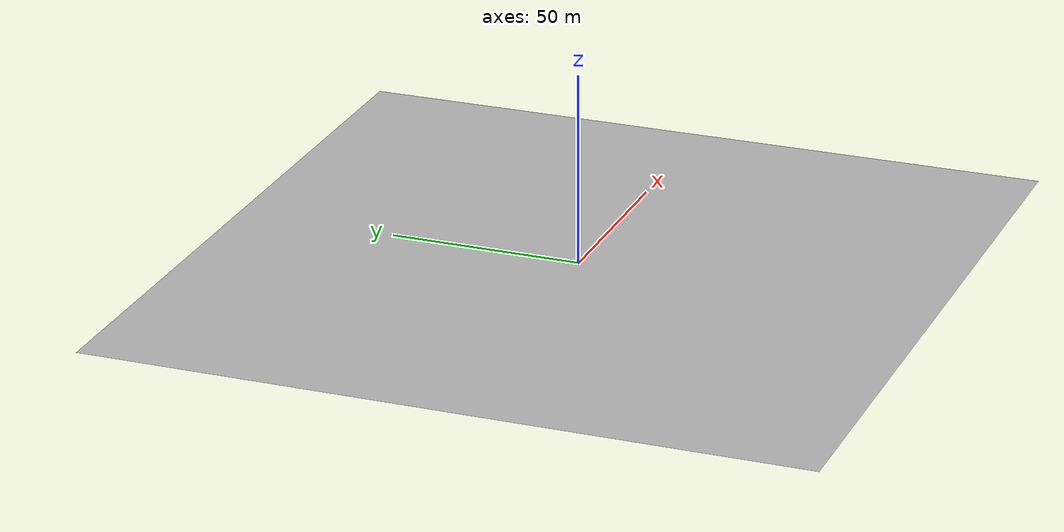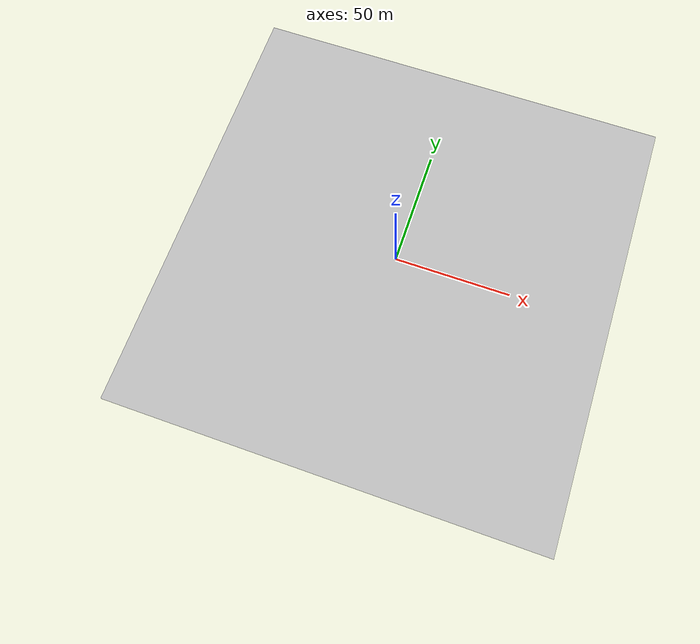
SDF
<?xml version="1.0" ?>
<sdf version="1.5">
  <model name="island_grass">
    <pose>0 0 0 0 0 0</pose>
    <static>true</static>
    <link name="body">
     <collision name='collision'>
        <geometry>
            <mesh><uri>model://urdf/models/island_grass/media/island_grass.dae</uri></mesh>
          </geometry>
        </collision>
      <visual name="visual">
         <cast_shadows>false</cast_shadows>
        <geometry>
          <mesh><uri>model://urdf/models/island_grass/media/island_grass.dae</uri></mesh>
        </geometry>
	    <material>
          <script>
            <uri>model://urdf/models/island_grass/media/scripts</uri>
            <uri>model://urdf/models/island_grass/media/Textures</uri>
            <name>RepeatedGrass/Diffuse</name>
          </script>
        </material>
      </visual>
    </link>
  </model>
</sdf>
